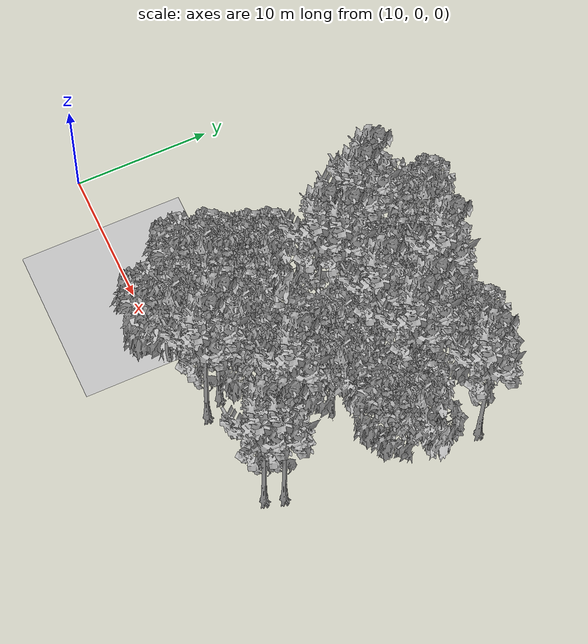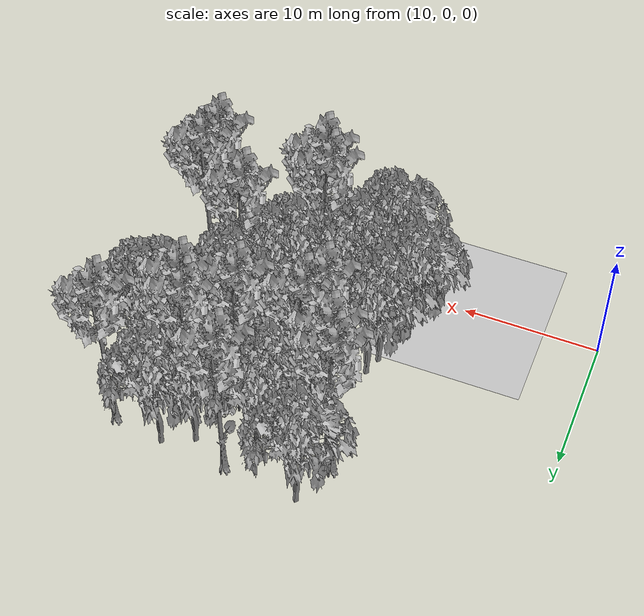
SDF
<sdf version="1.7">
 <world name="default">
  <model name="ground_plane">
   <static>1</static>
   <link name="link">
    <collision name="collision">
     <pose>20.0 0 0 0 -0 0</pose>
     <geometry><plane><normal>0 0 1</normal><size>40 40</size></plane></geometry>
     <surface><contact><ode><min_depth>0.01</min_depth><max_vel>0</max_vel></ode></contact></surface>
    </collision>
    <visual name="grass">
     <pose>20.0 0 0 0 -0 0</pose>
     <cast_shadows>0</cast_shadows>
     <geometry>
      <mesh>
       <scale>0.22052631578947368 0.22621621621621624 0.1</scale>
       <uri>model://grass_plane/meshes/grass_plane.dae</uri>
      </mesh>
     </geometry>
    </visual>
   </link>
  </model>
  <model name="Tree 2">
   <static>1</static>
   <pose>34.60442979063412 15.636615383582757 0 1.57079 -0 0</pose>
   <link name="link">
    <collision name="collision">
     <geometry><mesh><scale>3.5 5 3.5</scale><uri>model://tree_9/meshes/tree_9.obj</uri></mesh></geometry>
    </collision>
    <visual name="visual">
     <geometry><mesh><scale>3.5 5 3.5</scale><uri>model://tree_9/meshes/tree_9.obj</uri></mesh></geometry>
    </visual>
   </link>
  </model>
  <model name="Tree 4">
   <static>1</static>
   <pose>29.97942979063412 2.303282050249422 0 1.57079 -0 0</pose>
   <link name="link">
    <collision name="collision">
     <geometry><mesh><scale>3.5 5 3.5</scale><uri>model://tree_9/meshes/tree_9.obj</uri></mesh></geometry>
    </collision>
    <visual name="visual">
     <geometry><mesh><scale>3.5 5 3.5</scale><uri>model://tree_9/meshes/tree_9.obj</uri></mesh></geometry>
    </visual>
   </link>
  </model>
  <model name="Tree 8">
   <static>1</static>
   <pose>27.66692979063412 12.673652420619788 0 1.57079 -0 0</pose>
   <link name="link">
    <collision name="collision">
     <geometry><mesh><scale>3.5 5 3.5</scale><uri>model://tree_9/meshes/tree_9.obj</uri></mesh></geometry>
    </collision>
    <visual name="visual">
     <geometry><mesh><scale>3.5 5 3.5</scale><uri>model://tree_9/meshes/tree_9.obj</uri></mesh></geometry>
    </visual>
   </link>
  </model>
  <model name="Tree 13">
   <static>1</static>
   <pose>23.04192979063412 3.784763531730899 0 1.57079 -0 0</pose>
   <link name="link">
    <collision name="collision">
     <geometry><mesh><scale>3.5 5 3.5</scale><uri>model://tree_2/meshes/tree_2.obj</uri></mesh></geometry>
    </collision>
    <visual name="visual">
     <geometry><mesh><scale>3.5 5 3.5</scale><uri>model://tree_2/meshes/tree_2.obj</uri></mesh></geometry>
    </visual>
   </link>
  </model>
  <model name="Tree 20">
   <static>1</static>
   <pose>31.13567979063412 18.59957834654572 0 1.57079 -0 0</pose>
   <link name="link">
    <collision name="collision">
     <geometry><mesh><scale>3.5 5 3.5</scale><uri>model://tree_9/meshes/tree_9.obj</uri></mesh></geometry>
    </collision>
    <visual name="visual">
     <geometry><mesh><scale>3.5 5 3.5</scale><uri>model://tree_9/meshes/tree_9.obj</uri></mesh></geometry>
    </visual>
   </link>
  </model>
  <model name="Tree 26">
   <static>1</static>
   <pose>38.07317979063412 11.685998099632144 0 1.57079 -0 0</pose>
   <link name="link">
    <collision name="collision">
     <geometry><mesh><scale>3.5 5 3.5</scale><uri>model://tree_2/meshes/tree_2.obj</uri></mesh></geometry>
    </collision>
    <visual name="visual">
     <geometry><mesh><scale>3.5 5 3.5</scale><uri>model://tree_2/meshes/tree_2.obj</uri></mesh></geometry>
    </visual>
   </link>
  </model>
  <model name="Tree 29">
   <static>1</static>
   <pose>24.19817979063412 16.130442544076587 0 1.57079 -0 0</pose>
   <link name="link">
    <collision name="collision">
     <geometry><mesh><scale>3.5 5 3.5</scale><uri>model://tree_9/meshes/tree_9.obj</uri></mesh></geometry>
    </collision>
    <visual name="visual">
     <geometry><mesh><scale>3.5 5 3.5</scale><uri>model://tree_9/meshes/tree_9.obj</uri></mesh></geometry>
    </visual>
   </link>
  </model>
  <model name="Tree 38">
   <static>1</static>
   <pose>39.80755479063412 17.611924025558068 0 1.57079 -0 0</pose>
   <link name="link">
    <collision name="collision">
     <geometry><mesh><scale>3.5 5 3.5</scale><uri>model://tree_9/meshes/tree_9.obj</uri></mesh></geometry>
    </collision>
    <visual name="visual">
     <geometry><mesh><scale>3.5 5 3.5</scale><uri>model://tree_9/meshes/tree_9.obj</uri></mesh></geometry>
    </visual>
   </link>
  </model>
  <model name="Tree 40">
   <static>1</static>
   <pose>28.24505479063412 4.2785906922247285 0 1.57079 -0 0</pose>
   <link name="link">
    <collision name="collision">
     <geometry><mesh><scale>3.5 5 3.5</scale><uri>model://tree_2/meshes/tree_2.obj</uri></mesh></geometry>
    </collision>
    <visual name="visual">
     <geometry><mesh><scale>3.5 5 3.5</scale><uri>model://tree_2/meshes/tree_2.obj</uri></mesh></geometry>
    </visual>
   </link>
  </model>
  <model name="Tree 44">
   <static>1</static>
   <pose>32.87005479063412 14.648961062595099 0 1.57079 -0 0</pose>
   <link name="link">
    <collision name="collision">
     <geometry><mesh><scale>3.5 5 3.5</scale><uri>model://tree_2/meshes/tree_2.obj</uri></mesh></geometry>
    </collision>
    <visual name="visual">
     <geometry><mesh><scale>3.5 5 3.5</scale><uri>model://tree_2/meshes/tree_2.obj</uri></mesh></geometry>
    </visual>
   </link>
  </model>
  <model name="Tree 52">
   <static>1</static>
   <pose>31.71380479063412 10.204516618150656 0 1.57079 -0 0</pose>
   <link name="link">
    <collision name="collision">
     <geometry><mesh><scale>3.5 5 3.5</scale><uri>model://tree_2/meshes/tree_2.obj</uri></mesh></geometry>
    </collision>
    <visual name="visual">
     <geometry><mesh><scale>3.5 5 3.5</scale><uri>model://tree_2/meshes/tree_2.obj</uri></mesh></geometry>
    </visual>
   </link>
  </model>
  <model name="Tree 56">
   <static>1</static>
   <pose>29.40130479063412 16.62426970457041 0 1.57079 -0 0</pose>
   <link name="link">
    <collision name="collision">
     <geometry><mesh><scale>3.5 5 3.5</scale><uri>model://tree_2/meshes/tree_2.obj</uri></mesh></geometry>
    </collision>
    <visual name="visual">
     <geometry><mesh><scale>3.5 5 3.5</scale><uri>model://tree_2/meshes/tree_2.obj</uri></mesh></geometry>
    </visual>
   </link>
  </model>
  <model name="Tree 58">
   <static>1</static>
   <pose>38.65130479063412 3.29093637123707 0 1.57079 -0 0</pose>
   <link name="link">
    <collision name="collision">
     <geometry><mesh><scale>3.5 5 3.5</scale><uri>model://tree_9/meshes/tree_9.obj</uri></mesh></geometry>
    </collision>
    <visual name="visual">
     <geometry><mesh><scale>3.5 5 3.5</scale><uri>model://tree_9/meshes/tree_9.obj</uri></mesh></geometry>
    </visual>
   </link>
  </model>
  <model name="Tree 61">
   <static>1</static>
   <pose>24.77630479063412 7.735380815681516 0 1.57079 -0 0</pose>
   <link name="link">
    <collision name="collision">
     <geometry><mesh><scale>3.5 5 3.5</scale><uri>model://tree_2/meshes/tree_2.obj</uri></mesh></geometry>
    </collision>
    <visual name="visual">
     <geometry><mesh><scale>3.5 5 3.5</scale><uri>model://tree_2/meshes/tree_2.obj</uri></mesh></geometry>
    </visual>
   </link>
  </model>
  <model name="Tree 64">
   <static>1</static>
   <pose>25.64349229063412 0.3279734082741115 0 1.57079 -0 0</pose>
   <link name="link">
    <collision name="collision">
     <geometry><mesh><scale>3.5 5 3.5</scale><uri>model://tree_2/meshes/tree_2.obj</uri></mesh></geometry>
    </collision>
    <visual name="visual">
     <geometry><mesh><scale>3.5 5 3.5</scale><uri>model://tree_2/meshes/tree_2.obj</uri></mesh></geometry>
    </visual>
   </link>
  </model>
  <model name="Tree 76">
   <static>1</static>
   <pose>32.58099229063412 6.253899334200035 0 1.57079 -0 0</pose>
   <link name="link">
    <collision name="collision">
     <geometry><mesh><scale>3.5 5 3.5</scale><uri>model://tree_2/meshes/tree_2.obj</uri></mesh></geometry>
    </collision>
    <visual name="visual">
     <geometry><mesh><scale>3.5 5 3.5</scale><uri>model://tree_2/meshes/tree_2.obj</uri></mesh></geometry>
    </visual>
   </link>
  </model>
  <model name="Tree 80">
   <static>1</static>
   <pose>26.79974229063412 11.356779992636255 0 1.57079 -0 0</pose>
   <link name="link">
    <collision name="collision">
     <geometry><mesh><scale>3.5 5 3.5</scale><uri>model://tree_9/meshes/tree_9.obj</uri></mesh></geometry>
    </collision>
    <visual name="visual">
     <geometry><mesh><scale>3.5 5 3.5</scale><uri>model://tree_9/meshes/tree_9.obj</uri></mesh></geometry>
    </visual>
   </link>
  </model>
  <model name="Tree 92">
   <static>1</static>
   <pose>33.73724229063412 17.28270591856218 0 1.57079 -0 0</pose>
   <link name="link">
    <collision name="collision">
     <geometry><mesh><scale>3.5 5 3.5</scale><uri>model://tree_2/meshes/tree_2.obj</uri></mesh></geometry>
    </collision>
    <visual name="visual">
     <geometry><mesh><scale>3.5 5 3.5</scale><uri>model://tree_2/meshes/tree_2.obj</uri></mesh></geometry>
    </visual>
   </link>
  </model>
  <model name="Tree 98">
   <static>1</static>
   <pose>35.47161729063412 14.319742955599217 0 1.57079 -0 0</pose>
   <link name="link">
    <collision name="collision">
     <geometry><mesh><scale>3.5 5 3.5</scale><uri>model://tree_9/meshes/tree_9.obj</uri></mesh></geometry>
    </collision>
    <visual name="visual">
     <geometry><mesh><scale>3.5 5 3.5</scale><uri>model://tree_9/meshes/tree_9.obj</uri></mesh></geometry>
    </visual>
   </link>
  </model>
  <model name="Tree 100">
   <static>1</static>
   <pose>30.84661729063412 0.986409622265878 0 1.57079 -0 0</pose>
   <link name="link">
    <collision name="collision">
     <geometry><mesh><scale>3.5 5 3.5</scale><uri>model://tree_9/meshes/tree_9.obj</uri></mesh></geometry>
    </collision>
    <visual name="visual">
     <geometry><mesh><scale>3.5 5 3.5</scale><uri>model://tree_9/meshes/tree_9.obj</uri></mesh></geometry>
    </visual>
   </link>
  </model>
  <model name="Tree 112">
   <static>1</static>
   <pose>27.37786729063412 2.9617182642411954 0 1.57079 -0 0</pose>
   <link name="link">
    <collision name="collision">
     <geometry><mesh><scale>3.5 5 3.5</scale><uri>model://tree_2/meshes/tree_2.obj</uri></mesh></geometry>
    </collision>
    <visual name="visual">
     <geometry><mesh><scale>3.5 5 3.5</scale><uri>model://tree_2/meshes/tree_2.obj</uri></mesh></geometry>
    </visual>
   </link>
  </model>
  <model name="Tree 116">
   <static>1</static>
   <pose>32.00286729063412 13.332088634611566 0 1.57079 -0 0</pose>
   <link name="link">
    <collision name="collision">
     <geometry><mesh><scale>3.5 5 3.5</scale><uri>model://tree_9/meshes/tree_9.obj</uri></mesh></geometry>
    </collision>
    <visual name="visual">
     <geometry><mesh><scale>3.5 5 3.5</scale><uri>model://tree_9/meshes/tree_9.obj</uri></mesh></geometry>
    </visual>
   </link>
  </model>
  <model name="Tree 124">
   <static>1</static>
   <pose>34.31536729063412 8.887644190167112 0 1.57079 -0 0</pose>
   <link name="link">
    <collision name="collision">
     <geometry><mesh><scale>3.5 5 3.5</scale><uri>model://tree_2/meshes/tree_2.obj</uri></mesh></geometry>
    </collision>
    <visual name="visual">
     <geometry><mesh><scale>3.5 5 3.5</scale><uri>model://tree_2/meshes/tree_2.obj</uri></mesh></geometry>
    </visual>
   </link>
  </model>
  <model name="Tree 125">
   <static>1</static>
   <pose>25.06536729063412 14.813570116093047 0 1.57079 -0 0</pose>
   <link name="link">
    <collision name="collision">
     <geometry><mesh><scale>3.5 5 3.5</scale><uri>model://tree_9/meshes/tree_9.obj</uri></mesh></geometry>
    </collision>
    <visual name="visual">
     <geometry><mesh><scale>3.5 5 3.5</scale><uri>model://tree_9/meshes/tree_9.obj</uri></mesh></geometry>
    </visual>
   </link>
  </model>
  <model name="Tree 128">
   <static>1</static>
   <pose>25.49896104063412 19.25801456053749 0 1.57079 -0 0</pose>
   <link name="link">
    <collision name="collision">
     <geometry><mesh><scale>3.5 5 3.5</scale><uri>model://tree_2/meshes/tree_2.obj</uri></mesh></geometry>
    </collision>
    <visual name="visual">
     <geometry><mesh><scale>3.5 5 3.5</scale><uri>model://tree_2/meshes/tree_2.obj</uri></mesh></geometry>
    </visual>
   </link>
  </model>
  <model name="Tree 130">
   <static>1</static>
   <pose>34.74896104063412 5.924681227204154 0 1.57079 -0 0</pose>
   <link name="link">
    <collision name="collision">
     <geometry><mesh><scale>3.5 5 3.5</scale><uri>model://tree_9/meshes/tree_9.obj</uri></mesh></geometry>
    </collision>
    <visual name="visual">
     <geometry><mesh><scale>3.5 5 3.5</scale><uri>model://tree_9/meshes/tree_9.obj</uri></mesh></geometry>
    </visual>
   </link>
  </model>
  <model name="Tree 134">
   <static>1</static>
   <pose>39.37396104063412 12.344434313623907 0 1.57079 -0 0</pose>
   <link name="link">
    <collision name="collision">
     <geometry><mesh><scale>3.5 5 3.5</scale><uri>model://tree_2/meshes/tree_2.obj</uri></mesh></geometry>
    </collision>
    <visual name="visual">
     <geometry><mesh><scale>3.5 5 3.5</scale><uri>model://tree_2/meshes/tree_2.obj</uri></mesh></geometry>
    </visual>
   </link>
  </model>
  <model name="Tree 146">
   <static>1</static>
   <pose>35.90521104063412 18.27036023954983 0 1.57079 -0 0</pose>
   <link name="link">
    <collision name="collision">
     <geometry><mesh><scale>3.5 5 3.5</scale><uri>model://tree_2/meshes/tree_2.obj</uri></mesh></geometry>
    </collision>
    <visual name="visual">
     <geometry><mesh><scale>3.5 5 3.5</scale><uri>model://tree_2/meshes/tree_2.obj</uri></mesh></geometry>
    </visual>
   </link>
  </model>
  <model name="Tree 148">
   <static>1</static>
   <pose>31.28021104063412 4.937026906216495 0 1.57079 -0 0</pose>
   <link name="link">
    <collision name="collision">
     <geometry><mesh><scale>3.5 5 3.5</scale><uri>model://tree_2/meshes/tree_2.obj</uri></mesh></geometry>
    </collision>
    <visual name="visual">
     <geometry><mesh><scale>3.5 5 3.5</scale><uri>model://tree_2/meshes/tree_2.obj</uri></mesh></geometry>
    </visual>
   </link>
  </model>
  <model name="Tree 152">
   <static>1</static>
   <pose>28.96771104063412 15.307397276586869 0 1.57079 -0 0</pose>
   <link name="link">
    <collision name="collision">
     <geometry><mesh><scale>3.5 5 3.5</scale><uri>model://tree_2/meshes/tree_2.obj</uri></mesh></geometry>
    </collision>
    <visual name="visual">
     <geometry><mesh><scale>3.5 5 3.5</scale><uri>model://tree_2/meshes/tree_2.obj</uri></mesh></geometry>
    </visual>
   </link>
  </model>
  <model name="Tree 154">
   <static>1</static>
   <pose>38.21771104063412 1.9740639432535367 0 1.57079 -0 0</pose>
   <link name="link">
    <collision name="collision">
     <geometry><mesh><scale>3.5 5 3.5</scale><uri>model://tree_9/meshes/tree_9.obj</uri></mesh></geometry>
    </collision>
    <visual name="visual">
     <geometry><mesh><scale>3.5 5 3.5</scale><uri>model://tree_9/meshes/tree_9.obj</uri></mesh></geometry>
    </visual>
   </link>
  </model>
  <model name="Tree 157">
   <static>1</static>
   <pose>24.34271104063412 6.418508387697983 0 1.57079 -0 0</pose>
   <link name="link">
    <collision name="collision">
     <geometry><mesh><scale>3.5 5 3.5</scale><uri>model://tree_2/meshes/tree_2.obj</uri></mesh></geometry>
    </collision>
    <visual name="visual">
     <geometry><mesh><scale>3.5 5 3.5</scale><uri>model://tree_2/meshes/tree_2.obj</uri></mesh></geometry>
    </visual>
   </link>
  </model>
 </world>
</sdf>
